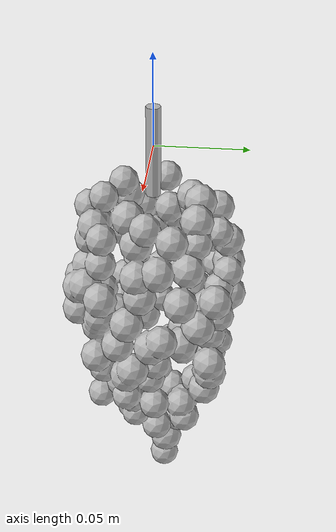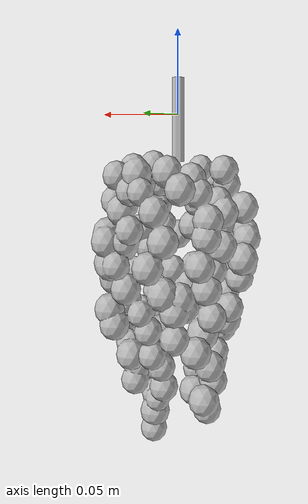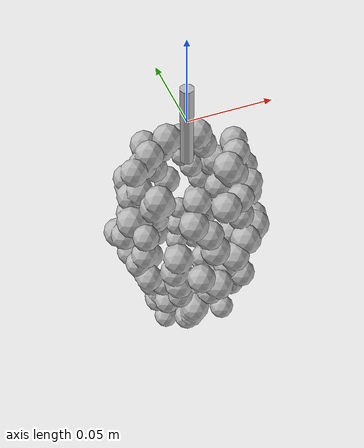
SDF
<?xml version='1.0' encoding='utf-8'?>
<sdf version="1.6">
  <model name="grape_bunch_golden">
    <link name="bunch">
      <gravity>false</gravity>
      <inertial>
        <pose>0.000208033 9.11374e-05 -0.114342 0 0 0</pose>
        <mass>0.15</mass>
        <inertia>
          <ixx>0.000561699</ixx>
          <iyy>0.000567853</iyy>
          <izz>0.000274954</izz>
          <ixy>0</ixy>
          <ixz>0</ixz>
          <iyz>0</iyz>
        </inertia>
      </inertial>
      <collision name="berries">
        <pose>0.000208033 9.11374e-05 -0.114342 0 0 0</pose>
        <geometry>
          <box>
            <size>0.106039 0.103692 0.184889</size>
          </box>
        </geometry>
      </collision>
      <visual name="berries">
        <geometry>
          <mesh>
            <uri>model://grape_bunch_golden/meshes/berries.obj</uri>
          </mesh>
        </geometry>
      </visual>
      <visual name="stem">
        <geometry>
          <mesh>
            <uri>model://grape_bunch_golden/meshes/stem.obj</uri>
          </mesh>
        </geometry>
      </visual>
    </link>
  </model>
</sdf>
